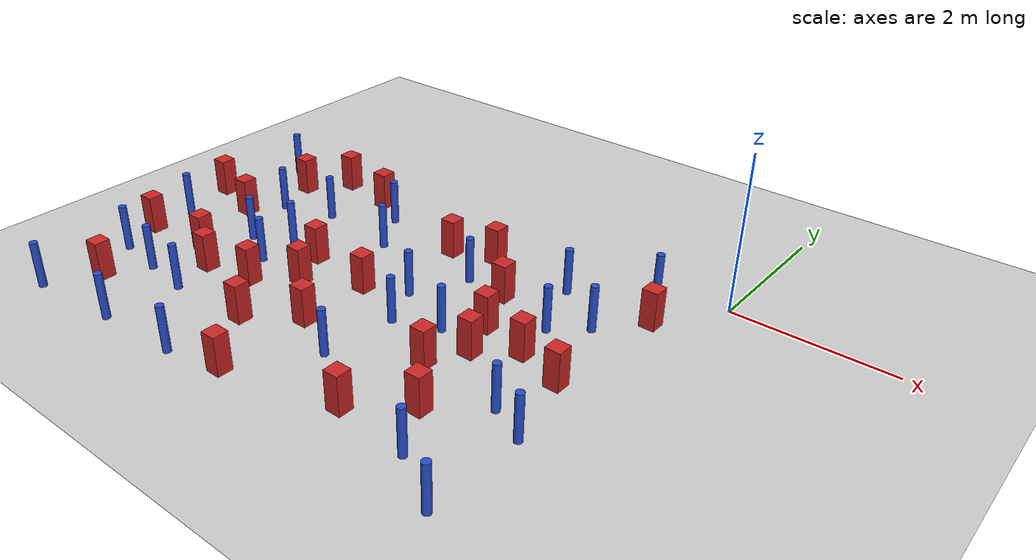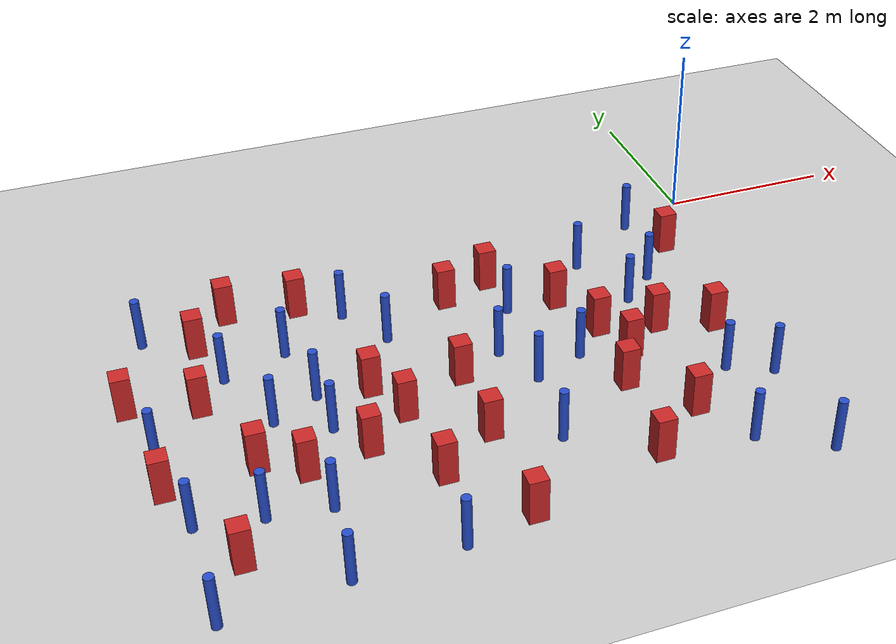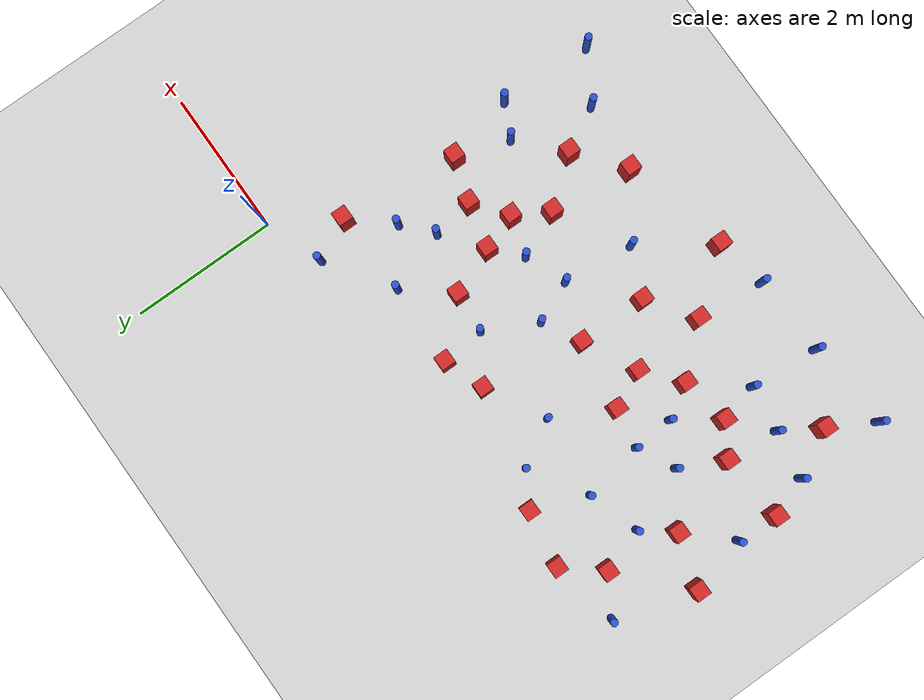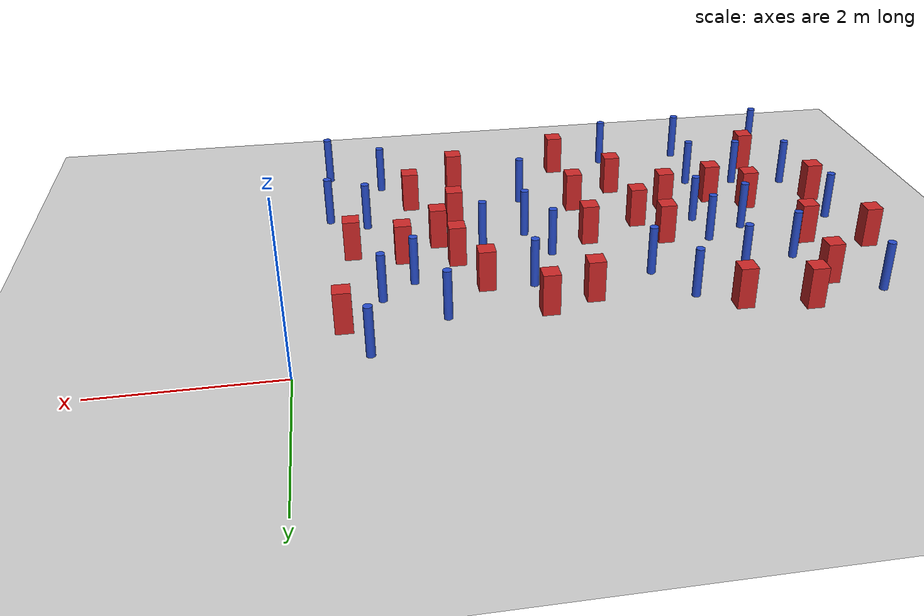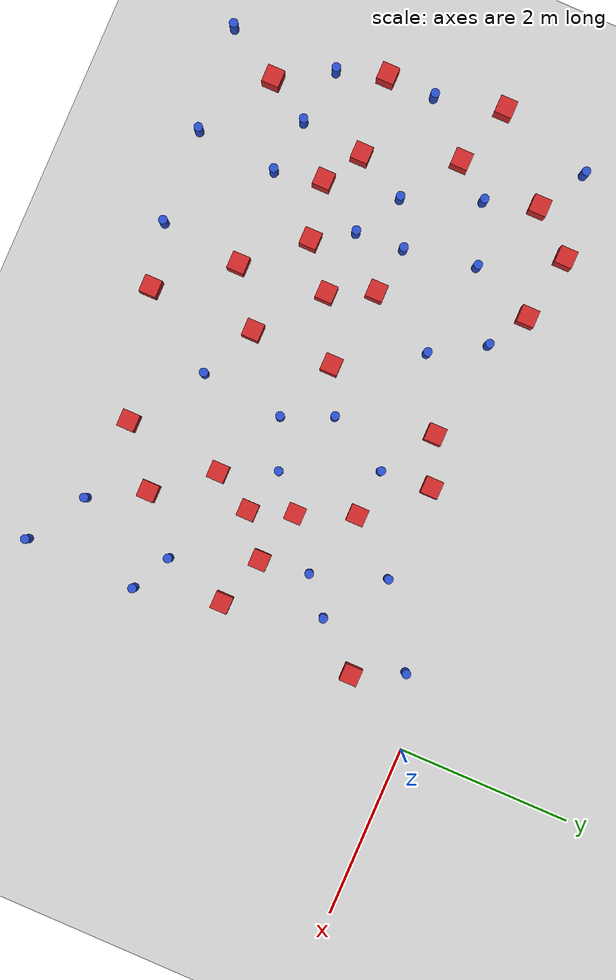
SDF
<sdf version="1.6">
 <world name="default">
  <model name="ground_plane">
   <static>1</static>
   <link name="link">
    <collision name="collision">
     <geometry><plane><normal>0 0 1</normal><size>100 100</size></plane></geometry>
     <surface><friction><ode><mu>100</mu><mu2>50</mu2></ode></friction></surface>
    </collision>
    <visual name="visual">
     <cast_shadows>0</cast_shadows>
     <geometry><plane><normal>0 0 1</normal><size>100 100</size></plane></geometry>
     <material>
      <ambient>1.0 1.0 1.0 1.0</ambient>
      <diffuse>0.8 0.8 0.8 1.0</diffuse>
      <specular>0.01 0.01 0.01 1.000000</specular>
     </material>
    </visual>
   </link>
  </model>
  <model name="square_post_obstacle0">
   <static>true</static>
   <pose>-3.35205404195 -1.05310210833 1.91545236811e-07 -7.35059704564e-06 1.12565212e-07 2.39332434364e-05</pose>
   <link name="link">
    <pose>0 0 0.25 0 -0 0</pose>
    <inertial>
     <mass>100</mass>
     <inertia>
      <ixx>0.166667</ixx>
      <ixy>0</ixy>
      <ixz>0</ixz>
      <iyy>0.166667</iyy>
      <iyz>0</iyz>
      <izz>0.166667</izz>
     </inertia>
    </inertial>
    <collision name="collision"><geometry><box><size>.2 .2 .5</size></box></geometry></collision>
    <visual name="visual">
     <geometry><box><size>.2 .2 .5</size></box></geometry>
     <material>
      <script><name>Gazebo/Red</name><uri>file://media/materials/scripts/gazebo.material</uri></script>
     </material>
    </visual>
   </link>
  </model>
  <model name="square_post_obstacle1">
   <static>true</static>
   <pose>-2.80025574521 -0.854373793812 1.91545236811e-07 -7.35059704564e-06 1.12565212e-07 2.39332434364e-05</pose>
   <link name="link">
    <pose>0 0 0.25 0 -0 0</pose>
    <inertial>
     <mass>100</mass>
     <inertia>
      <ixx>0.166667</ixx>
      <ixy>0</ixy>
      <ixz>0</ixz>
      <iyy>0.166667</iyy>
      <iyz>0</iyz>
      <izz>0.166667</izz>
     </inertia>
    </inertial>
    <collision name="collision"><geometry><box><size>.2 .2 .5</size></box></geometry></collision>
    <visual name="visual">
     <geometry><box><size>.2 .2 .5</size></box></geometry>
     <material>
      <script><name>Gazebo/Red</name><uri>file://media/materials/scripts/gazebo.material</uri></script>
     </material>
    </visual>
   </link>
  </model>
  <model name="square_post_obstacle7">
   <static>true</static>
   <pose>-3.60774097283 -3.35516538326 1.91545236811e-07 -7.35059704564e-06 1.12565212e-07 2.39332434364e-05</pose>
   <link name="link">
    <pose>0 0 0.25 0 -0 0</pose>
    <inertial>
     <mass>100</mass>
     <inertia>
      <ixx>0.166667</ixx>
      <ixy>0</ixy>
      <ixz>0</ixz>
      <iyy>0.166667</iyy>
      <iyz>0</iyz>
      <izz>0.166667</izz>
     </inertia>
    </inertial>
    <collision name="collision"><geometry><box><size>.2 .2 .5</size></box></geometry></collision>
    <visual name="visual">
     <geometry><box><size>.2 .2 .5</size></box></geometry>
     <material>
      <script><name>Gazebo/Red</name><uri>file://media/materials/scripts/gazebo.material</uri></script>
     </material>
    </visual>
   </link>
  </model>
  <model name="square_post_obstacle8">
   <static>true</static>
   <pose>-6.26026981273 -4.26427524342 1.91545236811e-07 -7.35059704564e-06 1.12565212e-07 2.39332434364e-05</pose>
   <link name="link">
    <pose>0 0 0.25 0 -0 0</pose>
    <inertial>
     <mass>100</mass>
     <inertia>
      <ixx>0.166667</ixx>
      <ixy>0</ixy>
      <ixz>0</ixz>
      <iyy>0.166667</iyy>
      <iyz>0</iyz>
      <izz>0.166667</izz>
     </inertia>
    </inertial>
    <collision name="collision"><geometry><box><size>.2 .2 .5</size></box></geometry></collision>
    <visual name="visual">
     <geometry><box><size>.2 .2 .5</size></box></geometry>
     <material>
      <script><name>Gazebo/Red</name><uri>file://media/materials/scripts/gazebo.material</uri></script>
     </material>
    </visual>
   </link>
  </model>
  <model name="square_post_obstacle10">
   <static>true</static>
   <pose>-0.714707923323 -2.4765753038 1.91545236811e-07 -7.35059704564e-06 1.12565212e-07 2.39332434364e-05</pose>
   <link name="link">
    <pose>0 0 0.25 0 -0 0</pose>
    <inertial>
     <mass>100</mass>
     <inertia>
      <ixx>0.166667</ixx>
      <ixy>0</ixy>
      <ixz>0</ixz>
      <iyy>0.166667</iyy>
      <iyz>0</iyz>
      <izz>0.166667</izz>
     </inertia>
    </inertial>
    <collision name="collision"><geometry><box><size>.2 .2 .5</size></box></geometry></collision>
    <visual name="visual">
     <geometry><box><size>.2 .2 .5</size></box></geometry>
     <material>
      <script><name>Gazebo/Red</name><uri>file://media/materials/scripts/gazebo.material</uri></script>
     </material>
    </visual>
   </link>
  </model>
  <model name="square_post_obstacle11">
   <static>true</static>
   <pose>-1.5187978776 -3.70903876873 1.91545236811e-07 -7.35059704564e-06 1.12565212e-07 2.39332434364e-05</pose>
   <link name="link">
    <pose>0 0 0.25 0 -0 0</pose>
    <inertial>
     <mass>100</mass>
     <inertia>
      <ixx>0.166667</ixx>
      <ixy>0</ixy>
      <ixz>0</ixz>
      <iyy>0.166667</iyy>
      <iyz>0</iyz>
      <izz>0.166667</izz>
     </inertia>
    </inertial>
    <collision name="collision"><geometry><box><size>.2 .2 .5</size></box></geometry></collision>
    <visual name="visual">
     <geometry><box><size>.2 .2 .5</size></box></geometry>
     <material>
      <script><name>Gazebo/Red</name><uri>file://media/materials/scripts/gazebo.material</uri></script>
     </material>
    </visual>
   </link>
  </model>
  <model name="pole_obstacle9">
   <static>true</static>
   <pose>-5.93752363122 -1.59175689322 7.38925637345e-09 -8.471706928e-08 1.24976765134e-08 -1.74513093015e-07</pose>
   <link name="link">
    <pose>0 0 0.3 0 -0 0</pose>
    <inertial>
     <mass>1</mass>
     <inertia><ixx>0.145833</ixx><ixy>0</ixy><ixz>0</ixz><iyy>0.145833</iyy><iyz>0</iyz><izz>0.125</izz></inertia>
    </inertial>
    <collision name="collision">
     <geometry><cylinder><radius>0.05</radius><length>.6</length></cylinder></geometry>
    </collision>
    <visual name="visual">
     <geometry><cylinder><radius>0.05</radius><length>.6</length></cylinder></geometry>
     <material>
      <script><name>Gazebo/Blue</name><uri>file://media/materials/scripts/gazebo.material</uri></script>
     </material>
    </visual>
   </link>
  </model>
  <model name="square_post_obstacle18">
   <static>true</static>
   <pose>-2.19181532281 -1.48671952237 1.91545236811e-07 -7.35059704564e-06 1.12565212e-07 2.39332434364e-05</pose>
   <link name="link">
    <pose>0 0 0.25 0 -0 0</pose>
    <inertial>
     <mass>100</mass>
     <inertia>
      <ixx>0.166667</ixx>
      <ixy>0</ixy>
      <ixz>0</ixz>
      <iyy>0.166667</iyy>
      <iyz>0</iyz>
      <izz>0.166667</izz>
     </inertia>
    </inertial>
    <collision name="collision"><geometry><box><size>.2 .2 .5</size></box></geometry></collision>
    <visual name="visual">
     <geometry><box><size>.2 .2 .5</size></box></geometry>
     <material>
      <script><name>Gazebo/Red</name><uri>file://media/materials/scripts/gazebo.material</uri></script>
     </material>
    </visual>
   </link>
  </model>
  <model name="pole_obstacle16">
   <static>true</static>
   <pose>-1.39018965243 -1.717288133 7.38925637345e-09 -8.471706928e-08 1.24976765079e-08 -1.74513093017e-07</pose>
   <link name="link">
    <pose>0 0 0.3 0 -0 0</pose>
    <inertial>
     <mass>1</mass>
     <inertia><ixx>0.145833</ixx><ixy>0</ixy><ixz>0</ixz><iyy>0.145833</iyy><iyz>0</iyz><izz>0.125</izz></inertia>
    </inertial>
    <collision name="collision">
     <geometry><cylinder><radius>0.05</radius><length>.6</length></cylinder></geometry>
    </collision>
    <visual name="visual">
     <geometry><cylinder><radius>0.05</radius><length>.6</length></cylinder></geometry>
     <material>
      <script><name>Gazebo/Blue</name><uri>file://media/materials/scripts/gazebo.material</uri></script>
     </material>
    </visual>
   </link>
  </model>
  <model name="square_post_obstacle27">
   <static>true</static>
   <pose>-2.1458424664 -4.21667184286 1.91545236811e-07 -7.35059704564e-06 1.12565212e-07 2.39332434364e-05</pose>
   <link name="link">
    <pose>0 0 0.25 0 -0 0</pose>
    <inertial>
     <mass>100</mass>
     <inertia>
      <ixx>0.166667</ixx>
      <ixy>0</ixy>
      <ixz>0</ixz>
      <iyy>0.166667</iyy>
      <iyz>0</iyz>
      <izz>0.166667</izz>
     </inertia>
    </inertial>
    <collision name="collision"><geometry><box><size>.2 .2 .5</size></box></geometry></collision>
    <visual name="visual">
     <geometry><box><size>.2 .2 .5</size></box></geometry>
     <material>
      <script><name>Gazebo/Red</name><uri>file://media/materials/scripts/gazebo.material</uri></script>
     </material>
    </visual>
   </link>
  </model>
  <model name="square_post_obstacle31">
   <static>true</static>
   <pose>-1.76271494415 -2.6173337315 1.91545236811e-07 -7.35059704564e-06 1.12565212e-07 2.39332434364e-05</pose>
   <link name="link">
    <pose>0 0 0.25 0 -0 0</pose>
    <inertial>
     <mass>100</mass>
     <inertia>
      <ixx>0.166667</ixx>
      <ixy>0</ixy>
      <ixz>0</ixz>
      <iyy>0.166667</iyy>
      <iyz>0</iyz>
      <izz>0.166667</izz>
     </inertia>
    </inertial>
    <collision name="collision"><geometry><box><size>.2 .2 .5</size></box></geometry></collision>
    <visual name="visual">
     <geometry><box><size>.2 .2 .5</size></box></geometry>
     <material>
      <script><name>Gazebo/Red</name><uri>file://media/materials/scripts/gazebo.material</uri></script>
     </material>
    </visual>
   </link>
  </model>
  <model name="pole_obstacle35">
   <static>true</static>
   <pose>-1.00203987756 -1.37999559367 7.38925637345e-09 -8.47170692799e-08 1.24976765078e-08 -1.74513093016e-07</pose>
   <link name="link">
    <pose>0 0 0.3 0 -0 0</pose>
    <inertial>
     <mass>1</mass>
     <inertia><ixx>0.145833</ixx><ixy>0</ixy><ixz>0</ixz><iyy>0.145833</iyy><iyz>0</iyz><izz>0.125</izz></inertia>
    </inertial>
    <collision name="collision">
     <geometry><cylinder><radius>0.05</radius><length>.6</length></cylinder></geometry>
    </collision>
    <visual name="visual">
     <geometry><cylinder><radius>0.05</radius><length>.6</length></cylinder></geometry>
     <material>
      <script><name>Gazebo/Blue</name><uri>file://media/materials/scripts/gazebo.material</uri></script>
     </material>
    </visual>
   </link>
  </model>
  <model name="square_post_obstacle38">
   <static>true</static>
   <pose>-4.54529064855 -2.27787753896 1.91545236811e-07 -7.35059704564e-06 1.12565212e-07 2.39332434364e-05</pose>
   <link name="link">
    <pose>0 0 0.25 0 -0 0</pose>
    <inertial>
     <mass>100</mass>
     <inertia>
      <ixx>0.166667</ixx>
      <ixy>0</ixy>
      <ixz>0</ixz>
      <iyy>0.166667</iyy>
      <iyz>0</iyz>
      <izz>0.166667</izz>
     </inertia>
    </inertial>
    <collision name="collision"><geometry><box><size>.2 .2 .5</size></box></geometry></collision>
    <visual name="visual">
     <geometry><box><size>.2 .2 .5</size></box></geometry>
     <material>
      <script><name>Gazebo/Red</name><uri>file://media/materials/scripts/gazebo.material</uri></script>
     </material>
    </visual>
   </link>
  </model>
  <model name="square_post_obstacle39">
   <static>true</static>
   <pose>-6.24920300681 -1.99376732815 1.91545236811e-07 -7.35059704564e-06 1.12565212e-07 2.39332434364e-05</pose>
   <link name="link">
    <pose>0 0 0.25 0 -0 0</pose>
    <inertial>
     <mass>100</mass>
     <inertia>
      <ixx>0.166667</ixx>
      <ixy>0</ixy>
      <ixz>0</ixz>
      <iyy>0.166667</iyy>
      <iyz>0</iyz>
      <izz>0.166667</izz>
     </inertia>
    </inertial>
    <collision name="collision"><geometry><box><size>.2 .2 .5</size></box></geometry></collision>
    <visual name="visual">
     <geometry><box><size>.2 .2 .5</size></box></geometry>
     <material>
      <script><name>Gazebo/Red</name><uri>file://media/materials/scripts/gazebo.material</uri></script>
     </material>
    </visual>
   </link>
  </model>
  <model name="square_post_obstacle45">
   <static>true</static>
   <pose>-5.71560937671 -0.508581135843 1.91545236811e-07 -7.35059704564e-06 1.12565212e-07 2.39332434364e-05</pose>
   <link name="link">
    <pose>0 0 0.25 0 -0 0</pose>
    <inertial>
     <mass>100</mass>
     <inertia>
      <ixx>0.166667</ixx>
      <ixy>0</ixy>
      <ixz>0</ixz>
      <iyy>0.166667</iyy>
      <iyz>0</iyz>
      <izz>0.166667</izz>
     </inertia>
    </inertial>
    <collision name="collision"><geometry><box><size>.2 .2 .5</size></box></geometry></collision>
    <visual name="visual">
     <geometry><box><size>.2 .2 .5</size></box></geometry>
     <material>
      <script><name>Gazebo/Red</name><uri>file://media/materials/scripts/gazebo.material</uri></script>
     </material>
    </visual>
   </link>
  </model>
  <model name="pole_obstacle52">
   <static>true</static>
   <pose>-2.29312866113 -2.47645922917 7.38925637345e-09 -8.47170692798e-08 1.24976764939e-08 -1.74513093025e-07</pose>
   <link name="link">
    <pose>0 0 0.3 0 -0 0</pose>
    <inertial>
     <mass>1</mass>
     <inertia><ixx>0.145833</ixx><ixy>0</ixy><ixz>0</ixz><iyy>0.145833</iyy><iyz>0</iyz><izz>0.125</izz></inertia>
    </inertial>
    <collision name="collision">
     <geometry><cylinder><radius>0.05</radius><length>.6</length></cylinder></geometry>
    </collision>
    <visual name="visual">
     <geometry><cylinder><radius>0.05</radius><length>.6</length></cylinder></geometry>
     <material>
      <script><name>Gazebo/Blue</name><uri>file://media/materials/scripts/gazebo.material</uri></script>
     </material>
    </visual>
   </link>
  </model>
  <model name="square_post_obstacle57">
   <static>true</static>
   <pose>-5.44568561055 -3.30279436829 1.91545236811e-07 -7.35059704564e-06 1.12565212e-07 2.39332434364e-05</pose>
   <link name="link">
    <pose>0 0 0.25 0 -0 0</pose>
    <inertial>
     <mass>100</mass>
     <inertia>
      <ixx>0.166667</ixx>
      <ixy>0</ixy>
      <ixz>0</ixz>
      <iyy>0.166667</iyy>
      <iyz>0</iyz>
      <izz>0.166667</izz>
     </inertia>
    </inertial>
    <collision name="collision"><geometry><box><size>.2 .2 .5</size></box></geometry></collision>
    <visual name="visual">
     <geometry><box><size>.2 .2 .5</size></box></geometry>
     <material>
      <script><name>Gazebo/Red</name><uri>file://media/materials/scripts/gazebo.material</uri></script>
     </material>
    </visual>
   </link>
  </model>
  <model name="pole_obstacle55">
   <static>true</static>
   <pose>-5.24322393895 -1.367704212 7.38925637345e-09 -8.471706928e-08 1.24976765134e-08 -1.74513093015e-07</pose>
   <link name="link">
    <pose>0 0 0.3 0 -0 0</pose>
    <inertial>
     <mass>1</mass>
     <inertia><ixx>0.145833</ixx><ixy>0</ixy><ixz>0</ixz><iyy>0.145833</iyy><iyz>0</iyz><izz>0.125</izz></inertia>
    </inertial>
    <collision name="collision">
     <geometry><cylinder><radius>0.05</radius><length>.6</length></cylinder></geometry>
    </collision>
    <visual name="visual">
     <geometry><cylinder><radius>0.05</radius><length>.6</length></cylinder></geometry>
     <material>
      <script><name>Gazebo/Blue</name><uri>file://media/materials/scripts/gazebo.material</uri></script>
     </material>
    </visual>
   </link>
  </model>
  <model name="square_post_obstacle66">
   <static>true</static>
   <pose>-6.79276998924 -3.11589565613 1.91545236811e-07 -7.35059704564e-06 1.12565212e-07 2.39332434364e-05</pose>
   <link name="link">
    <pose>0 0 0.25 0 -0 0</pose>
    <inertial>
     <mass>100</mass>
     <inertia>
      <ixx>0.166667</ixx>
      <ixy>0</ixy>
      <ixz>0</ixz>
      <iyy>0.166667</iyy>
      <iyz>0</iyz>
      <izz>0.166667</izz>
     </inertia>
    </inertial>
    <collision name="collision"><geometry><box><size>.2 .2 .5</size></box></geometry></collision>
    <visual name="visual">
     <geometry><box><size>.2 .2 .5</size></box></geometry>
     <material>
      <script><name>Gazebo/Red</name><uri>file://media/materials/scripts/gazebo.material</uri></script>
     </material>
    </visual>
   </link>
  </model>
  <model name="pole_obstacle67">
   <static>true</static>
   <pose>-3.09479942852 -2.14637452894 7.38925637345e-09 -8.471706928e-08 1.24976765098e-08 -1.74513093016e-07</pose>
   <link name="link">
    <pose>0 0 0.3 0 -0 0</pose>
    <inertial>
     <mass>1</mass>
     <inertia><ixx>0.145833</ixx><ixy>0</ixy><ixz>0</ixz><iyy>0.145833</iyy><iyz>0</iyz><izz>0.125</izz></inertia>
    </inertial>
    <collision name="collision">
     <geometry><cylinder><radius>0.05</radius><length>.6</length></cylinder></geometry>
    </collision>
    <visual name="visual">
     <geometry><cylinder><radius>0.05</radius><length>.6</length></cylinder></geometry>
     <material>
      <script><name>Gazebo/Blue</name><uri>file://media/materials/scripts/gazebo.material</uri></script>
     </material>
    </visual>
   </link>
  </model>
  <model name="square_post_obstacle73">
   <static>true</static>
   <pose>-6.97013407362 -1.77519401391 1.91545236811e-07 -7.35059704564e-06 1.12565212e-07 2.39332434364e-05</pose>
   <link name="link">
    <pose>0 0 0.25 0 -0 0</pose>
    <inertial>
     <mass>100</mass>
     <inertia>
      <ixx>0.166667</ixx>
      <ixy>0</ixy>
      <ixz>0</ixz>
      <iyy>0.166667</iyy>
      <iyz>0</iyz>
      <izz>0.166667</izz>
     </inertia>
    </inertial>
    <collision name="collision"><geometry><box><size>.2 .2 .5</size></box></geometry></collision>
    <visual name="visual">
     <geometry><box><size>.2 .2 .5</size></box></geometry>
     <material>
      <script><name>Gazebo/Red</name><uri>file://media/materials/scripts/gazebo.material</uri></script>
     </material>
    </visual>
   </link>
  </model>
  <model name="pole_obstacle69">
   <static>true</static>
   <pose>-0.806349752582 -0.300620984767 7.38925637345e-09 -8.471706928e-08 1.24976765108e-08 -1.74513093015e-07</pose>
   <link name="link">
    <pose>0 0 0.3 0 -0 0</pose>
    <inertial>
     <mass>1</mass>
     <inertia><ixx>0.145833</ixx><ixy>0</ixy><ixz>0</ixz><iyy>0.145833</iyy><iyz>0</iyz><izz>0.125</izz></inertia>
    </inertial>
    <collision name="collision">
     <geometry><cylinder><radius>0.05</radius><length>.6</length></cylinder></geometry>
    </collision>
    <visual name="visual">
     <geometry><cylinder><radius>0.05</radius><length>.6</length></cylinder></geometry>
     <material>
      <script><name>Gazebo/Blue</name><uri>file://media/materials/scripts/gazebo.material</uri></script>
     </material>
    </visual>
   </link>
  </model>
  <model name="pole_obstacle70">
   <static>true</static>
   <pose>-5.40647166767 -4.79094509978 7.38925637345e-09 -8.47170692796e-08 1.24976764786e-08 -1.74513093032e-07</pose>
   <link name="link">
    <pose>0 0 0.3 0 -0 0</pose>
    <inertial>
     <mass>1</mass>
     <inertia><ixx>0.145833</ixx><ixy>0</ixy><ixz>0</ixz><iyy>0.145833</iyy><iyz>0</iyz><izz>0.125</izz></inertia>
    </inertial>
    <collision name="collision">
     <geometry><cylinder><radius>0.05</radius><length>.6</length></cylinder></geometry>
    </collision>
    <visual name="visual">
     <geometry><cylinder><radius>0.05</radius><length>.6</length></cylinder></geometry>
     <material>
      <script><name>Gazebo/Blue</name><uri>file://media/materials/scripts/gazebo.material</uri></script>
     </material>
    </visual>
   </link>
  </model>
  <model name="pole_obstacle77">
   <static>true</static>
   <pose>-2.74207842261 -1.44136198626 7.38925637345e-09 -8.471706928e-08 1.24976765152e-08 -1.74513093012e-07</pose>
   <link name="link">
    <pose>0 0 0.3 0 -0 0</pose>
    <inertial>
     <mass>1</mass>
     <inertia><ixx>0.145833</ixx><ixy>0</ixy><ixz>0</ixz><iyy>0.145833</iyy><iyz>0</iyz><izz>0.125</izz></inertia>
    </inertial>
    <collision name="collision">
     <geometry><cylinder><radius>0.05</radius><length>.6</length></cylinder></geometry>
    </collision>
    <visual name="visual">
     <geometry><cylinder><radius>0.05</radius><length>.6</length></cylinder></geometry>
     <material>
      <script><name>Gazebo/Blue</name><uri>file://media/materials/scripts/gazebo.material</uri></script>
     </material>
    </visual>
   </link>
  </model>
  <model name="pole_obstacle81">
   <static>true</static>
   <pose>-2.85286738278 -2.70254274022 7.38925637345e-09 -8.47170692798e-08 1.24976764939e-08 -1.74513093025e-07</pose>
   <link name="link">
    <pose>0 0 0.3 0 -0 0</pose>
    <inertial>
     <mass>1</mass>
     <inertia><ixx>0.145833</ixx><ixy>0</ixy><ixz>0</ixz><iyy>0.145833</iyy><iyz>0</iyz><izz>0.125</izz></inertia>
    </inertial>
    <collision name="collision">
     <geometry><cylinder><radius>0.05</radius><length>.6</length></cylinder></geometry>
    </collision>
    <visual name="visual">
     <geometry><cylinder><radius>0.05</radius><length>.6</length></cylinder></geometry>
     <material>
      <script><name>Gazebo/Blue</name><uri>file://media/materials/scripts/gazebo.material</uri></script>
     </material>
    </visual>
   </link>
  </model>
  <model name="pole_obstacle85">
   <static>true</static>
   <pose>-0.471710706661 -3.43713797419 7.38925637345e-09 -8.471706928e-08 1.24976765163e-08 -1.74513093012e-07</pose>
   <link name="link">
    <pose>0 0 0.3 0 -0 0</pose>
    <inertial>
     <mass>1</mass>
     <inertia><ixx>0.145833</ixx><ixy>0</ixy><ixz>0</ixz><iyy>0.145833</iyy><iyz>0</iyz><izz>0.125</izz></inertia>
    </inertial>
    <collision name="collision">
     <geometry><cylinder><radius>0.05</radius><length>.6</length></cylinder></geometry>
    </collision>
    <visual name="visual">
     <geometry><cylinder><radius>0.05</radius><length>.6</length></cylinder></geometry>
     <material>
      <script><name>Gazebo/Blue</name><uri>file://media/materials/scripts/gazebo.material</uri></script>
     </material>
    </visual>
   </link>
  </model>
  <model name="pole_obstacle86">
   <static>true</static>
   <pose>-1.17666531663 -4.31988248369 7.38925637345e-09 -8.47170692799e-08 1.24976765033e-08 -1.74513093018e-07</pose>
   <link name="link">
    <pose>0 0 0.3 0 -0 0</pose>
    <inertial>
     <mass>1</mass>
     <inertia><ixx>0.145833</ixx><ixy>0</ixy><ixz>0</ixz><iyy>0.145833</iyy><iyz>0</iyz><izz>0.125</izz></inertia>
    </inertial>
    <collision name="collision">
     <geometry><cylinder><radius>0.05</radius><length>.6</length></cylinder></geometry>
    </collision>
    <visual name="visual">
     <geometry><cylinder><radius>0.05</radius><length>.6</length></cylinder></geometry>
     <material>
      <script><name>Gazebo/Blue</name><uri>file://media/materials/scripts/gazebo.material</uri></script>
     </material>
    </visual>
   </link>
  </model>
  <model name="pole_obstacle91">
   <static>true</static>
   <pose>-5.32243948183 -3.85045962684 7.38925637345e-09 -8.47170692798e-08 1.24976764937e-08 -1.74513093023e-07</pose>
   <link name="link">
    <pose>0 0 0.3 0 -0 0</pose>
    <inertial>
     <mass>1</mass>
     <inertia><ixx>0.145833</ixx><ixy>0</ixy><ixz>0</ixz><iyy>0.145833</iyy><iyz>0</iyz><izz>0.125</izz></inertia>
    </inertial>
    <collision name="collision">
     <geometry><cylinder><radius>0.05</radius><length>.6</length></cylinder></geometry>
    </collision>
    <visual name="visual">
     <geometry><cylinder><radius>0.05</radius><length>.6</length></cylinder></geometry>
     <material>
      <script><name>Gazebo/Blue</name><uri>file://media/materials/scripts/gazebo.material</uri></script>
     </material>
    </visual>
   </link>
  </model>
  <model name="pole_obstacle93">
   <static>true</static>
   <pose>-4.14370102779 -1.4936705909 7.38925637345e-09 -8.471706928e-08 1.24976765134e-08 -1.74513093015e-07</pose>
   <link name="link">
    <pose>0 0 0.3 0 -0 0</pose>
    <inertial>
     <mass>1</mass>
     <inertia><ixx>0.145833</ixx><ixy>0</ixy><ixz>0</ixz><iyy>0.145833</iyy><iyz>0</iyz><izz>0.125</izz></inertia>
    </inertial>
    <collision name="collision">
     <geometry><cylinder><radius>0.05</radius><length>.6</length></cylinder></geometry>
    </collision>
    <visual name="visual">
     <geometry><cylinder><radius>0.05</radius><length>.6</length></cylinder></geometry>
     <material>
      <script><name>Gazebo/Blue</name><uri>file://media/materials/scripts/gazebo.material</uri></script>
     </material>
    </visual>
   </link>
  </model>
  <model name="square_post_obstacle84">
   <static>true</static>
   <pose>-1.93456623168 -2.12454926943 1.91545236811e-07 -7.35059704564e-06 1.12565212e-07 2.39332434364e-05</pose>
   <link name="link">
    <pose>0 0 0.25 0 -0 0</pose>
    <inertial>
     <mass>100</mass>
     <inertia>
      <ixx>0.166667</ixx>
      <ixy>0</ixy>
      <ixz>0</ixz>
      <iyy>0.166667</iyy>
      <iyz>0</iyz>
      <izz>0.166667</izz>
     </inertia>
    </inertial>
    <collision name="collision"><geometry><box><size>.2 .2 .5</size></box></geometry></collision>
    <visual name="visual">
     <geometry><box><size>.2 .2 .5</size></box></geometry>
     <material>
      <script><name>Gazebo/Red</name><uri>file://media/materials/scripts/gazebo.material</uri></script>
     </material>
    </visual>
   </link>
  </model>
  <model name="square_post_obstacle91">
   <static>true</static>
   <pose>-4.31109401303 -2.77810709299 1.91545236811e-07 -7.35059704564e-06 1.12565212e-07 2.39332434364e-05</pose>
   <link name="link">
    <pose>0 0 0.25 0 -0 0</pose>
    <inertial>
     <mass>100</mass>
     <inertia>
      <ixx>0.166667</ixx>
      <ixy>0</ixy>
      <ixz>0</ixz>
      <iyy>0.166667</iyy>
      <iyz>0</iyz>
      <izz>0.166667</izz>
     </inertia>
    </inertial>
    <collision name="collision"><geometry><box><size>.2 .2 .5</size></box></geometry></collision>
    <visual name="visual">
     <geometry><box><size>.2 .2 .5</size></box></geometry>
     <material>
      <script><name>Gazebo/Red</name><uri>file://media/materials/scripts/gazebo.material</uri></script>
     </material>
    </visual>
   </link>
  </model>
  <model name="pole_obstacle105">
   <static>true</static>
   <pose>-6.65634264613 -0.685558111573 7.38925637345e-09 -8.47170692799e-08 1.24976765038e-08 -1.74513093018e-07</pose>
   <link name="link">
    <pose>0 0 0.3 0 -0 0</pose>
    <inertial>
     <mass>1</mass>
     <inertia><ixx>0.145833</ixx><ixy>0</ixy><ixz>0</ixz><iyy>0.145833</iyy><iyz>0</iyz><izz>0.125</izz></inertia>
    </inertial>
    <collision name="collision">
     <geometry><cylinder><radius>0.05</radius><length>.6</length></cylinder></geometry>
    </collision>
    <visual name="visual">
     <geometry><cylinder><radius>0.05</radius><length>.6</length></cylinder></geometry>
     <material>
      <script><name>Gazebo/Blue</name><uri>file://media/materials/scripts/gazebo.material</uri></script>
     </material>
    </visual>
   </link>
  </model>
  <model name="pole_obstacle112">
   <static>true</static>
   <pose>-1.68080177443 -0.89224614505 7.38925637345e-09 -8.47170692799e-08 1.24976765075e-08 -1.74513093017e-07</pose>
   <link name="link">
    <pose>0 0 0.3 0 -0 0</pose>
    <inertial>
     <mass>1</mass>
     <inertia><ixx>0.145833</ixx><ixy>0</ixy><ixz>0</ixz><iyy>0.145833</iyy><iyz>0</iyz><izz>0.125</izz></inertia>
    </inertial>
    <collision name="collision">
     <geometry><cylinder><radius>0.05</radius><length>.6</length></cylinder></geometry>
    </collision>
    <visual name="visual">
     <geometry><cylinder><radius>0.05</radius><length>.6</length></cylinder></geometry>
     <material>
      <script><name>Gazebo/Blue</name><uri>file://media/materials/scripts/gazebo.material</uri></script>
     </material>
    </visual>
   </link>
  </model>
  <model name="pole_obstacle116">
   <static>true</static>
   <pose>-6.60998370963 -4.88880324449 7.38925637345e-09 -8.47170692796e-08 1.24976764786e-08 -1.74513093032e-07</pose>
   <link name="link">
    <pose>0 0 0.3 0 -0 0</pose>
    <inertial>
     <mass>1</mass>
     <inertia><ixx>0.145833</ixx><ixy>0</ixy><ixz>0</ixz><iyy>0.145833</iyy><iyz>0</iyz><izz>0.125</izz></inertia>
    </inertial>
    <collision name="collision">
     <geometry><cylinder><radius>0.05</radius><length>.6</length></cylinder></geometry>
    </collision>
    <visual name="visual">
     <geometry><cylinder><radius>0.05</radius><length>.6</length></cylinder></geometry>
     <material>
      <script><name>Gazebo/Blue</name><uri>file://media/materials/scripts/gazebo.material</uri></script>
     </material>
    </visual>
   </link>
  </model>
  <model name="pole_obstacle117">
   <static>true</static>
   <pose>-0.928038547865 -3.21100303753 7.38925637345e-09 -8.47170692799e-08 1.2497676509e-08 -1.74513093016e-07</pose>
   <link name="link">
    <pose>0 0 0.3 0 -0 0</pose>
    <inertial>
     <mass>1</mass>
     <inertia><ixx>0.145833</ixx><ixy>0</ixy><ixz>0</ixz><iyy>0.145833</iyy><iyz>0</iyz><izz>0.125</izz></inertia>
    </inertial>
    <collision name="collision">
     <geometry><cylinder><radius>0.05</radius><length>.6</length></cylinder></geometry>
    </collision>
    <visual name="visual">
     <geometry><cylinder><radius>0.05</radius><length>.6</length></cylinder></geometry>
     <material>
      <script><name>Gazebo/Blue</name><uri>file://media/materials/scripts/gazebo.material</uri></script>
     </material>
    </visual>
   </link>
  </model>
  <model name="square_post_obstacle104">
   <static>true</static>
   <pose>-4.22141495507 -3.79752678931 1.91545236811e-07 -7.35059704564e-06 1.12565212e-07 2.39332434364e-05</pose>
   <link name="link">
    <pose>0 0 0.25 0 -0 0</pose>
    <inertial>
     <mass>100</mass>
     <inertia>
      <ixx>0.166667</ixx>
      <ixy>0</ixy>
      <ixz>0</ixz>
      <iyy>0.166667</iyy>
      <iyz>0</iyz>
      <izz>0.166667</izz>
     </inertia>
    </inertial>
    <collision name="collision"><geometry><box><size>.2 .2 .5</size></box></geometry></collision>
    <visual name="visual">
     <geometry><box><size>.2 .2 .5</size></box></geometry>
     <material>
      <script><name>Gazebo/Red</name><uri>file://media/materials/scripts/gazebo.material</uri></script>
     </material>
    </visual>
   </link>
  </model>
  <model name="square_post_obstacle115">
   <static>true</static>
   <pose>-4.78411493183 -3.17529221268 1.91545236811e-07 -7.35059704564e-06 1.12565212e-07 2.39332434364e-05</pose>
   <link name="link">
    <pose>0 0 0.25 0 -0 0</pose>
    <inertial>
     <mass>100</mass>
     <inertia>
      <ixx>0.166667</ixx>
      <ixy>0</ixy>
      <ixz>0</ixz>
      <iyy>0.166667</iyy>
      <iyz>0</iyz>
      <izz>0.166667</izz>
     </inertia>
    </inertial>
    <collision name="collision"><geometry><box><size>.2 .2 .5</size></box></geometry></collision>
    <visual name="visual">
     <geometry><box><size>.2 .2 .5</size></box></geometry>
     <material>
      <script><name>Gazebo/Red</name><uri>file://media/materials/scripts/gazebo.material</uri></script>
     </material>
    </visual>
   </link>
  </model>
  <model name="square_post_obstacle120">
   <static>true</static>
   <pose>-2.0200210012 -3.08688402136 1.91545236811e-07 -7.35059704564e-06 1.12565212e-07 2.39332434364e-05</pose>
   <link name="link">
    <pose>0 0 0.25 0 -0 0</pose>
    <inertial>
     <mass>100</mass>
     <inertia>
      <ixx>0.166667</ixx>
      <ixy>0</ixy>
      <ixz>0</ixz>
      <iyy>0.166667</iyy>
      <iyz>0</iyz>
      <izz>0.166667</izz>
     </inertia>
    </inertial>
    <collision name="collision"><geometry><box><size>.2 .2 .5</size></box></geometry></collision>
    <visual name="visual">
     <geometry><box><size>.2 .2 .5</size></box></geometry>
     <material>
      <script><name>Gazebo/Red</name><uri>file://media/materials/scripts/gazebo.material</uri></script>
     </material>
    </visual>
   </link>
  </model>
  <model name="pole_obstacle141">
   <static>true</static>
   <pose>-6.78424789257 -2.55173626037 7.38925637345e-09 -8.47170692798e-08 1.24976764937e-08 -1.74513093023e-07</pose>
   <link name="link">
    <pose>0 0 0.3 0 -0 0</pose>
    <inertial>
     <mass>1</mass>
     <inertia><ixx>0.145833</ixx><ixy>0</ixy><ixz>0</ixz><iyy>0.145833</iyy><iyz>0</iyz><izz>0.125</izz></inertia>
    </inertial>
    <collision name="collision">
     <geometry><cylinder><radius>0.05</radius><length>.6</length></cylinder></geometry>
    </collision>
    <visual name="visual">
     <geometry><cylinder><radius>0.05</radius><length>.6</length></cylinder></geometry>
     <material>
      <script><name>Gazebo/Blue</name><uri>file://media/materials/scripts/gazebo.material</uri></script>
     </material>
    </visual>
   </link>
  </model>
  <model name="pole_obstacle151">
   <static>true</static>
   <pose>-2.95782612915 -3.66252131118 7.38925637345e-09 -8.47170692798e-08 1.24976764939e-08 -1.74513093025e-07</pose>
   <link name="link">
    <pose>0 0 0.3 0 -0 0</pose>
    <inertial>
     <mass>1</mass>
     <inertia><ixx>0.145833</ixx><ixy>0</ixy><ixz>0</ixz><iyy>0.145833</iyy><iyz>0</iyz><izz>0.125</izz></inertia>
    </inertial>
    <collision name="collision">
     <geometry><cylinder><radius>0.05</radius><length>.6</length></cylinder></geometry>
    </collision>
    <visual name="visual">
     <geometry><cylinder><radius>0.05</radius><length>.6</length></cylinder></geometry>
     <material>
      <script><name>Gazebo/Blue</name><uri>file://media/materials/scripts/gazebo.material</uri></script>
     </material>
    </visual>
   </link>
  </model>
  <model name="square_post_obstacle144">
   <static>true</static>
   <pose>-6.12326965105 -0.99724083134 1.91545236811e-07 -7.35059704564e-06 1.12565212e-07 2.39332434364e-05</pose>
   <link name="link">
    <pose>0 0 0.25 0 -0 0</pose>
    <inertial>
     <mass>100</mass>
     <inertia>
      <ixx>0.166667</ixx>
      <ixy>0</ixy>
      <ixz>0</ixz>
      <iyy>0.166667</iyy>
      <iyz>0</iyz>
      <izz>0.166667</izz>
     </inertia>
    </inertial>
    <collision name="collision"><geometry><box><size>.2 .2 .5</size></box></geometry></collision>
    <visual name="visual">
     <geometry><box><size>.2 .2 .5</size></box></geometry>
     <material>
      <script><name>Gazebo/Red</name><uri>file://media/materials/scripts/gazebo.material</uri></script>
     </material>
    </visual>
   </link>
  </model>
  <model name="square_post_obstacle147">
   <static>true</static>
   <pose>-3.60131889256 -4.58249047754 1.91545236811e-07 -7.35059704564e-06 1.12565212e-07 2.39332434364e-05</pose>
   <link name="link">
    <pose>0 0 0.25 0 -0 0</pose>
    <inertial>
     <mass>100</mass>
     <inertia>
      <ixx>0.166667</ixx>
      <ixy>0</ixy>
      <ixz>0</ixz>
      <iyy>0.166667</iyy>
      <iyz>0</iyz>
      <izz>0.166667</izz>
     </inertia>
    </inertial>
    <collision name="collision"><geometry><box><size>.2 .2 .5</size></box></geometry></collision>
    <visual name="visual">
     <geometry><box><size>.2 .2 .5</size></box></geometry>
     <material>
      <script><name>Gazebo/Red</name><uri>file://media/materials/scripts/gazebo.material</uri></script>
     </material>
    </visual>
   </link>
  </model>
  <model name="square_post_obstacle160">
   <static>true</static>
   <pose>-0.551531515671 -0.852606569155 1.91545236811e-07 -7.35059704564e-06 1.12565212e-07 2.39332434364e-05</pose>
   <link name="link">
    <pose>0 0 0.25 0 -0 0</pose>
    <inertial>
     <mass>100</mass>
     <inertia>
      <ixx>0.166667</ixx>
      <ixy>0</ixy>
      <ixz>0</ixz>
      <iyy>0.166667</iyy>
      <iyz>0</iyz>
      <izz>0.166667</izz>
     </inertia>
    </inertial>
    <collision name="collision"><geometry><box><size>.2 .2 .5</size></box></geometry></collision>
    <visual name="visual">
     <geometry><box><size>.2 .2 .5</size></box></geometry>
     <material>
      <script><name>Gazebo/Red</name><uri>file://media/materials/scripts/gazebo.material</uri></script>
     </material>
    </visual>
   </link>
  </model>
  <model name="pole_obstacle173">
   <static>true</static>
   <pose>-4.31797827901 -4.73941917827 7.38925637345e-09 -8.47170692796e-08 1.24976764786e-08 -1.74513093032e-07</pose>
   <link name="link">
    <pose>0 0 0.3 0 -0 0</pose>
    <inertial>
     <mass>1</mass>
     <inertia><ixx>0.145833</ixx><ixy>0</ixy><ixz>0</ixz><iyy>0.145833</iyy><iyz>0</iyz><izz>0.125</izz></inertia>
    </inertial>
    <collision name="collision">
     <geometry><cylinder><radius>0.05</radius><length>.6</length></cylinder></geometry>
    </collision>
    <visual name="visual">
     <geometry><cylinder><radius>0.05</radius><length>.6</length></cylinder></geometry>
     <material>
      <script><name>Gazebo/Blue</name><uri>file://media/materials/scripts/gazebo.material</uri></script>
     </material>
    </visual>
   </link>
  </model>
  <model name="pole_obstacle174">
   <static>true</static>
   <pose>-6.61333726299 -3.66097099192 7.38925637345e-09 -8.47170692798e-08 1.24976764937e-08 -1.74513093023e-07</pose>
   <link name="link">
    <pose>0 0 0.3 0 -0 0</pose>
    <inertial>
     <mass>1</mass>
     <inertia><ixx>0.145833</ixx><ixy>0</ixy><ixz>0</ixz><iyy>0.145833</iyy><iyz>0</iyz><izz>0.125</izz></inertia>
    </inertial>
    <collision name="collision">
     <geometry><cylinder><radius>0.05</radius><length>.6</length></cylinder></geometry>
    </collision>
    <visual name="visual">
     <geometry><cylinder><radius>0.05</radius><length>.6</length></cylinder></geometry>
     <material>
      <script><name>Gazebo/Blue</name><uri>file://media/materials/scripts/gazebo.material</uri></script>
     </material>
    </visual>
   </link>
  </model>
  <model name="square_post_obstacle167">
   <static>true</static>
   <pose>-5.87697353814 -3.03393413839 1.91545236811e-07 -7.35059704564e-06 1.12565212e-07 2.39332434364e-05</pose>
   <link name="link">
    <pose>0 0 0.25 0 -0 0</pose>
    <inertial>
     <mass>100</mass>
     <inertia>
      <ixx>0.166667</ixx>
      <ixy>0</ixy>
      <ixz>0</ixz>
      <iyy>0.166667</iyy>
      <iyz>0</iyz>
      <izz>0.166667</izz>
     </inertia>
    </inertial>
    <collision name="collision"><geometry><box><size>.2 .2 .5</size></box></geometry></collision>
    <visual name="visual">
     <geometry><box><size>.2 .2 .5</size></box></geometry>
     <material>
      <script><name>Gazebo/Red</name><uri>file://media/materials/scripts/gazebo.material</uri></script>
     </material>
    </visual>
   </link>
  </model>
  <model name="square_post_obstacle173">
   <static>true</static>
   <pose>-3.60353088772 -2.41060496707 1.91545236811e-07 -7.35059704564e-06 1.12565212e-07 2.39332434364e-05</pose>
   <link name="link">
    <pose>0 0 0.25 0 -0 0</pose>
    <inertial>
     <mass>100</mass>
     <inertia>
      <ixx>0.166667</ixx>
      <ixy>0</ixy>
      <ixz>0</ixz>
      <iyy>0.166667</iyy>
      <iyz>0</iyz>
      <izz>0.166667</izz>
     </inertia>
    </inertial>
    <collision name="collision"><geometry><box><size>.2 .2 .5</size></box></geometry></collision>
    <visual name="visual">
     <geometry><box><size>.2 .2 .5</size></box></geometry>
     <material>
      <script><name>Gazebo/Red</name><uri>file://media/materials/scripts/gazebo.material</uri></script>
     </material>
    </visual>
   </link>
  </model>
  <model name="square_post_obstacle184">
   <static>true</static>
   <pose>-1.30947093308 -2.27840355575 1.91545236811e-07 -7.35059704564e-06 1.12565212e-07 2.39332434364e-05</pose>
   <link name="link">
    <pose>0 0 0.25 0 -0 0</pose>
    <inertial>
     <mass>100</mass>
     <inertia>
      <ixx>0.166667</ixx>
      <ixy>0</ixy>
      <ixz>0</ixz>
      <iyy>0.166667</iyy>
      <iyz>0</iyz>
      <izz>0.166667</izz>
     </inertia>
    </inertial>
    <collision name="collision"><geometry><box><size>.2 .2 .5</size></box></geometry></collision>
    <visual name="visual">
     <geometry><box><size>.2 .2 .5</size></box></geometry>
     <material>
      <script><name>Gazebo/Red</name><uri>file://media/materials/scripts/gazebo.material</uri></script>
     </material>
    </visual>
   </link>
  </model>
  <model name="square_post_obstacle200">
   <static>true</static>
   <pose>-4.95084908869 -0.634601237116 1.91545236811e-07 -7.35059704564e-06 1.12565212e-07 2.39332434364e-05</pose>
   <link name="link">
    <pose>0 0 0.25 0 -0 0</pose>
    <inertial>
     <mass>100</mass>
     <inertia>
      <ixx>0.166667</ixx>
      <ixy>0</ixy>
      <ixz>0</ixz>
      <iyy>0.166667</iyy>
      <iyz>0</iyz>
      <izz>0.166667</izz>
     </inertia>
    </inertial>
    <collision name="collision"><geometry><box><size>.2 .2 .5</size></box></geometry></collision>
    <visual name="visual">
     <geometry><box><size>.2 .2 .5</size></box></geometry>
     <material>
      <script><name>Gazebo/Red</name><uri>file://media/materials/scripts/gazebo.material</uri></script>
     </material>
    </visual>
   </link>
  </model>
  <model name="pole_obstacle192">
   <static>true</static>
   <pose>-5.59812363604 -2.45027672746 7.38925637345e-09 -8.47170692798e-08 1.24976764937e-08 -1.74513093023e-07</pose>
   <link name="link">
    <pose>0 0 0.3 0 -0 0</pose>
    <inertial>
     <mass>1</mass>
     <inertia><ixx>0.145833</ixx><ixy>0</ixy><ixz>0</ixz><iyy>0.145833</iyy><iyz>0</iyz><izz>0.125</izz></inertia>
    </inertial>
    <collision name="collision">
     <geometry><cylinder><radius>0.05</radius><length>.6</length></cylinder></geometry>
    </collision>
    <visual name="visual">
     <geometry><cylinder><radius>0.05</radius><length>.6</length></cylinder></geometry>
     <material>
      <script><name>Gazebo/Blue</name><uri>file://media/materials/scripts/gazebo.material</uri></script>
     </material>
    </visual>
   </link>
  </model>
  <model name="pole_obstacle195">
   <static>true</static>
   <pose>-4.49780977742 -0.904571223604 7.38925637345e-09 -8.47170692799e-08 1.24976765038e-08 -1.74513093018e-07</pose>
   <link name="link">
    <pose>0 0 0.3 0 -0 0</pose>
    <inertial>
     <mass>1</mass>
     <inertia><ixx>0.145833</ixx><ixy>0</ixy><ixz>0</ixz><iyy>0.145833</iyy><iyz>0</iyz><izz>0.125</izz></inertia>
    </inertial>
    <collision name="collision">
     <geometry><cylinder><radius>0.05</radius><length>.6</length></cylinder></geometry>
    </collision>
    <visual name="visual">
     <geometry><cylinder><radius>0.05</radius><length>.6</length></cylinder></geometry>
     <material>
      <script><name>Gazebo/Blue</name><uri>file://media/materials/scripts/gazebo.material</uri></script>
     </material>
    </visual>
   </link>
  </model>
  <model name="pole_obstacle203">
   <static>true</static>
   <pose>-5.095624072 -2.19316552405 7.38925637345e-09 -8.47170692798e-08 1.24976764937e-08 -1.74513093023e-07</pose>
   <link name="link">
    <pose>0 0 0.3 0 -0 0</pose>
    <inertial>
     <mass>1</mass>
     <inertia><ixx>0.145833</ixx><ixy>0</ixy><ixz>0</ixz><iyy>0.145833</iyy><iyz>0</iyz><izz>0.125</izz></inertia>
    </inertial>
    <collision name="collision">
     <geometry><cylinder><radius>0.05</radius><length>.6</length></cylinder></geometry>
    </collision>
    <visual name="visual">
     <geometry><cylinder><radius>0.05</radius><length>.6</length></cylinder></geometry>
     <material>
      <script><name>Gazebo/Blue</name><uri>file://media/materials/scripts/gazebo.material</uri></script>
     </material>
    </visual>
   </link>
  </model>
  <model name="pole_obstacle208">
   <static>true</static>
   <pose>-5.05838698289 -2.74615080443 7.38925637345e-09 -8.47170692798e-08 1.24976764937e-08 -1.74513093023e-07</pose>
   <link name="link">
    <pose>0 0 0.3 0 -0 0</pose>
    <inertial>
     <mass>1</mass>
     <inertia><ixx>0.145833</ixx><ixy>0</ixy><ixz>0</ixz><iyy>0.145833</iyy><iyz>0</iyz><izz>0.125</izz></inertia>
    </inertial>
    <collision name="collision">
     <geometry><cylinder><radius>0.05</radius><length>.6</length></cylinder></geometry>
    </collision>
    <visual name="visual">
     <geometry><cylinder><radius>0.05</radius><length>.6</length></cylinder></geometry>
     <material>
      <script><name>Gazebo/Blue</name><uri>file://media/materials/scripts/gazebo.material</uri></script>
     </material>
    </visual>
   </link>
  </model>
  <model name="pole_obstacle214">
   <static>true</static>
   <pose>-5.95486205473 -3.76651181261 7.38925637345e-09 -8.47170692798e-08 1.24976764937e-08 -1.74513093023e-07</pose>
   <link name="link">
    <pose>0 0 0.3 0 -0 0</pose>
    <inertial>
     <mass>1</mass>
     <inertia><ixx>0.145833</ixx><ixy>0</ixy><ixz>0</ixz><iyy>0.145833</iyy><iyz>0</iyz><izz>0.125</izz></inertia>
    </inertial>
    <collision name="collision">
     <geometry><cylinder><radius>0.05</radius><length>.6</length></cylinder></geometry>
    </collision>
    <visual name="visual">
     <geometry><cylinder><radius>0.05</radius><length>.6</length></cylinder></geometry>
     <material>
      <script><name>Gazebo/Blue</name><uri>file://media/materials/scripts/gazebo.material</uri></script>
     </material>
    </visual>
   </link>
  </model>
  <model name="pole_obstacle218">
   <static>true</static>
   <pose>-0.500165081313 -4.73093163279 7.38925637345e-09 -8.471706928e-08 1.24976765117e-08 -1.74513093013e-07</pose>
   <link name="link">
    <pose>0 0 0.3 0 -0 0</pose>
    <inertial>
     <mass>1</mass>
     <inertia><ixx>0.145833</ixx><ixy>0</ixy><ixz>0</ixz><iyy>0.145833</iyy><iyz>0</iyz><izz>0.125</izz></inertia>
    </inertial>
    <collision name="collision">
     <geometry><cylinder><radius>0.05</radius><length>.6</length></cylinder></geometry>
    </collision>
    <visual name="visual">
     <geometry><cylinder><radius>0.05</radius><length>.6</length></cylinder></geometry>
     <material>
      <script><name>Gazebo/Blue</name><uri>file://media/materials/scripts/gazebo.material</uri></script>
     </material>
    </visual>
   </link>
  </model>
 </world>
</sdf>
